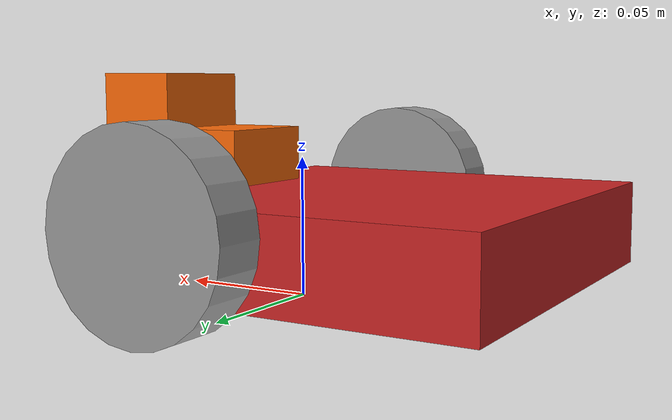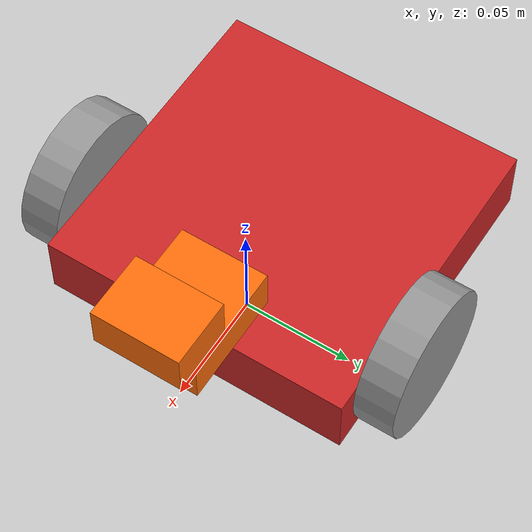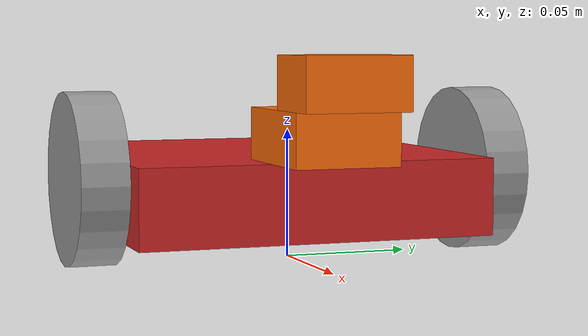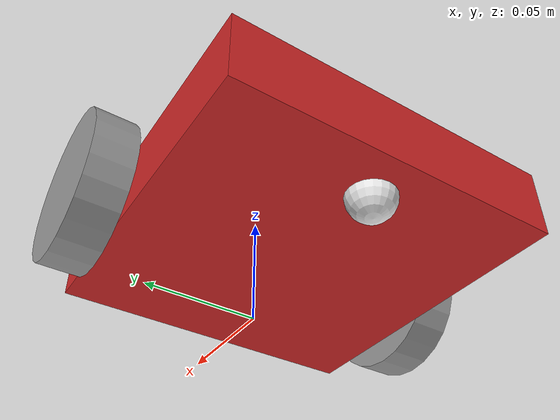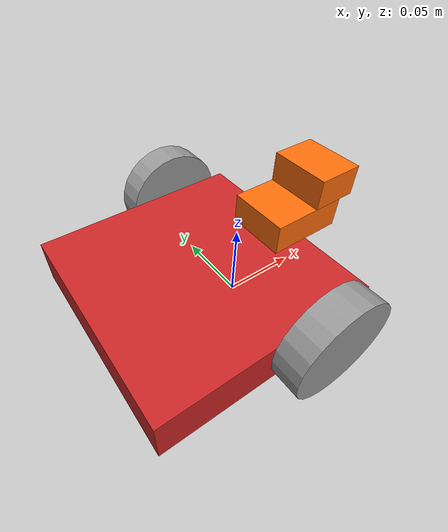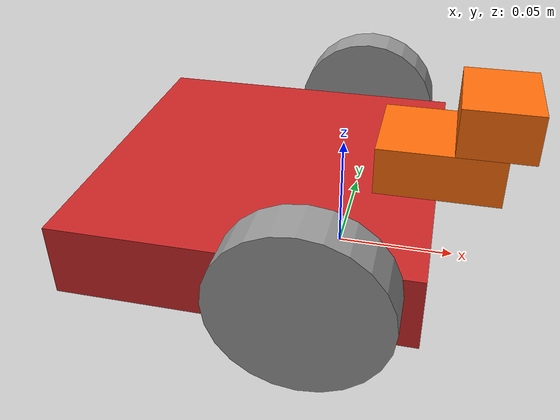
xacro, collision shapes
<?xml version="1.0"?>
<robot name="servomotor_diff_robot" xmlns:xacro="http://ros.org/wiki/xacro">
  <xacro:arg name="pi" default="3.14159"/>
  <xacro:include filename="$(find my_ugv_description)/urdf/servomotor_diff_robot_gazebo.xacro"/>

  <!-- Robot Gazebo Controller -->
  <xacro:servomotor_controller />

  <link name="base_footprint"/>

  <joint name="base_joint" type="fixed">
    <parent link="base_footprint"/>
    <child link="base_link"/>
    <origin xyz="0 0 0.01" rpy="0 0 0"/>
  </joint>
  <link name="base_link">
    <visual>
      <origin xyz="-0.03 0 0.015" rpy="0 0 0"/>
      <geometry>
        <box size="0.14 0.14 0.03" />
      </geometry>
    </visual>
    <collision>
      <origin xyz="-0.03 0 0.015" rpy="0 0 0"/>
      <geometry>
        <box size="0.140 0.140 0.03"/>
      </geometry>
    </collision>
    <inertial>
      <origin xyz="0 0 0.015" rpy="0 0 0"/> <!-- Note: A plugin is used to move the robot. To stabilize the mobile robot due to the servo_ link has inertia, a larger mass and inertia are used -->
      <mass value="${5*8.25e-01}"/>
      <inertia ixx="${5*1.4e-03}" ixy="0" ixz="0"
               iyy="${5*1.4e-03}" iyz="0"
               izz="${5*2.695e-03}" />
    </inertial>
  </link>

  <!-- Wheels definition (joints and links) -->
  <joint name="wheel_left_joint" type="continuous">
    <parent link="base_link"/>
    <child link="wheel_left_link"/>
    <origin xyz="0 0.08 0.023" rpy="-1.57 0 0"/>
    <axis xyz="0 0 1"/>
  </joint>
  <link name="wheel_left_link">
    <visual>
      <origin xyz="0 0 0" rpy="1.57 0 0"/>
      <geometry>
        <!--cylinder length="0.018" radius="0.033"/-->
        <mesh filename="package://my_ugv_description/meshes/husky_wheel.stl" scale="0.18 0.18 0.18"/>
      </geometry>
    </visual>
    <collision>
      <origin xyz="0 0 0" rpy="0 0 0"/>
      <geometry>
        <cylinder length="0.018" radius="0.033"/>
      </geometry>
    </collision>
    <inertial>
      <origin xyz="0 0 0" />
      <mass value="3e-02" />
      <inertia ixx="9e-06" ixy="0" ixz="0"
               iyy="9e-06" iyz="0"
               izz="1.6e-05" />
      </inertial>
  </link>

  <joint name="wheel_right_joint" type="continuous">
    <parent link="base_link"/>
    <child link="wheel_right_link"/>
    <origin xyz="0 -0.08 0.023" rpy="-1.57 0 0"/>
    <axis xyz="0 0 1"/>
  </joint>
  <link name="wheel_right_link">
    <visual>
      <origin xyz="0 0 0" rpy="1.57 0 0"/>
      <geometry>
        <!--cylinder length="0.018" radius="0.033"/-->
        <mesh filename="package://my_ugv_description/meshes/husky_wheel.stl" scale="0.18 0.18 0.18"/>
      </geometry>
    </visual>
    <collision>
      <origin xyz="0 0 0" rpy="0 0 0"/>
      <geometry>
        <cylinder length="0.018" radius="0.033"/>
      </geometry>
    </collision>
    <inertial>
      <origin xyz="0 0 0" />
      <mass value="3e-02" />
      <inertia ixx="9e-06" ixy="0" ixz="0"
               iyy="9e-06" iyz="0"
               izz="1.6e-05" />
      </inertial>
  </link>

  <!-- Caster wheel definition (joint and link) -->
  <joint name="caster_joint" type="fixed">
    <parent link="base_link"/>
    <child link="caster_link"/>
    <origin xyz="-0.08 0 0" rpy="0 0 0"/>
  </joint>
  <link name="caster_link">
    <visual>
      <origin xyz="0 0 0" rpy="0 0 0"/>
      <geometry>
        <sphere radius="0.01"/>
      </geometry>
    </visual>
    <collision>
      <origin xyz="0 0 0" rpy="0 0 0"/>
      <geometry>
        <sphere radius="0.01"/>
      </geometry>
    </collision>
    <inertial>
      <origin xyz="-0.08 0 0" />
      <mass value="5e-02" />
      <inertia ixx="2e-06" ixy="0" ixz="0" iyy="2e-06" iyz="0" izz="2e-06" />
    </inertial>
  </link>

  <!-- SERVOMOTOR and CAMERA definition -->
  <!-- Servomotor (joint, link and transmission) -->
  <joint name="servo_joint" type="revolute">
    <origin xyz="0.04 0 0.04" rpy="0 0 0"/>
    <parent link="base_link"/>
    <child link="servo_link"/>
    <axis xyz="0 0 1"/>
    <dynamics damping="0.001" friction="0.0"/> <!-- To allow the servo_link movement, both damping and friction parameters must be very low or zero. In this case, I add damping to reduce the oscillations in the steady state -->
    <limit effort="1" velocity="1" lower="${-pi/2}" upper="${pi/2}"/> <!-- Limit tag is required due to a revolute type joint is used -->
  </joint>

  <link name="servo_link">
    <visual>
      <origin xyz="0 0 0" rpy="0 0 0"/>
      <geometry>
        <box size="0.05 0.04 0.02"/>
      </geometry>
      <material name="orange"/> <!--Color in RViz-->
    </visual>

    <collision>
      <origin xyz="0 0 0" rpy="0 0 0"/>
      <geometry>
        <box size="0.05 0.04 0.02"/>
      </geometry>
    </collision>

    <inertial> <!-- The inertial tag must be correctly set up to obtain the desired link behavior -->
      <origin xyz="0 0 0" />
      <mass value="5e-02" />
      <inertia ixx="8.333e-06" ixy="0" ixz="0" iyy="1.2083e-05" iyz="0" izz="1.7083e-05" />
    </inertial>
  </link>

  <transmission name="tran">
    <type>transmission_interface/SimpleTransmission</type>
    <joint name="servo_joint">
      <hardwareInterface>hardware_interface/EffortJointInterface</hardwareInterface>
    </joint>
    <actuator name="motor">
      <hardwareInterface>hardware_interface/EffortJointInterface</hardwareInterface>
      <mechanicalReduction>1</mechanicalReduction><!-- This tag does not any change in simulation -->
    </actuator>
  </transmission>

  <!-- The joint and link of the camera. Note: Both link name and joint name must be the same as the ones used in the plugin -->
  <joint name="camera_rgb_optical_joint" type="fixed">
    <origin xyz="0.03 0 0.02" rpy="0 0 0"/> <!-- X axis is considered as the optical axis -->
    <parent link="servo_link"/> <!-- Note: The camera link is attached to the servo link -->
    <child link="camera_rgb_frame"/>
  </joint>
  <link name="camera_rgb_frame">
    <visual>
      <origin xyz="-0.015 0 0" rpy="0 0 0"/>
      <geometry>
        <box size="0.01 0.04 0.02"/>
      </geometry>
      <material name="orange"/> <!--Color in RViz-->
    </visual>
    <visual>
      <origin xyz="-0.01 0 0" rpy="0 0 0"/>
      <geometry>
        <mesh filename="package://my_ugv_description/meshes/max_sonar_ez4.dae" scale="1 1 0.8" />
      </geometry>
    </visual>

    <collision>
      <origin xyz="-0.01 0 0" rpy="0 0 0"/>
      <geometry>
        <box size="0.03 0.04 0.02"/>
      </geometry>
    </collision>
    <!-- Since a sensor is used, the inertial tag can be ommited -->
  </link>

</robot>

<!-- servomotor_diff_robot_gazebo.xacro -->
<robot name="servomotor_diff_robot" xmlns:xacro="http://ros.org/wiki/xacro">
  <xacro:arg name="camera_visual" default="true"/> <!-- With true, what the camera sees is shown en Gazebo-->
  <xacro:arg name="robot_ns" default="servo"/> <!-- The namespace must coincide with the one given in "*.yaml" and "*.launch" files -->

  <material name="orange"> <!-- Custom color (for RViz) -->
    <color rgba="${255/255} ${108/255} ${10/255} 1.0"/>
  </material>

  <gazebo reference="base_link">
    <material>Gazebo/Red</material> <!-- Color of the base link in Gazebo -->
  </gazebo>

  <gazebo reference="wheel_left_link"> <!-- Physical properties setup -->
    <mu1>0.1</mu1>
    <mu2>0.1</mu2>
    <kp>500000.0</kp>
    <kd>10.0</kd>
    <minDepth>0.001</minDepth>
    <maxVel>0.1</maxVel>
    <fdir1>1 0 0</fdir1>
    <material>Gazebo/Grey</material>
  </gazebo>

  <gazebo reference="wheel_right_link">
    <mu1>0.1</mu1>
    <mu2>0.1</mu2>
    <kp>500000.0</kp>
    <kd>10.0</kd>
    <minDepth>0.001</minDepth>
    <maxVel>0.1</maxVel>
    <fdir1>1 0 0</fdir1>
    <material>Gazebo/Grey</material>
  </gazebo>

  <gazebo reference="caster_link">
    <mu1>0.1</mu1>
    <mu2>0.1</mu2>
    <kp>1000000.0</kp>
    <kd>100.0</kd>
    <minDepth>0.001</minDepth>
    <maxVel>1.0</maxVel>
    <material>Gazebo/White</material>
  </gazebo>

  <gazebo reference="servo_link">
    <material>Gazebo/Gold</material>
  </gazebo>

  <gazebo>
    <plugin name="diff_controller" filename="libgazebo_ros_diff_drive.so"> <!-- Plugin for a differential mobile robot -->
      <commandTopic>cmd_vel</commandTopic>
      <odometryTopic>odom</odometryTopic>
      <odometryFrame>odom</odometryFrame>
      <odometrySource>world</odometrySource> <!-- world or encoder -->
      <publishOdomTF>true</publishOdomTF> <!-- Publish the fixed frame called odom, default = true-->
      <robotBaseFrame>base_footprint</robotBaseFrame>
      <publishWheelTF>true</publishWheelTF> <!-- default = false. To show the spining wheels attached to the robot in Rviz -->
      <publishTf>true</publishTf> <!-- default = true-->
      <publishWheelJointState>true</publishWheelJointState>
      <legacyMode>false</legacyMode>
      <updateRate>30</updateRate>
      <leftJoint>wheel_left_joint</leftJoint>
      <rightJoint>wheel_right_joint</rightJoint>
      <wheelSeparation>0.160</wheelSeparation>
      <wheelDiameter>0.066</wheelDiameter>
      <wheelAcceleration>1</wheelAcceleration>
      <wheelTorque>10</wheelTorque>
      <rosDebugLevel>na</rosDebugLevel>
    </plugin>
  </gazebo>

  <!-- A Raspberry Pi Camera v2.1 is simulated. Link : https://www.raspberrypi.org/documentation/hardware/camera/-->
  <gazebo reference="camera_rgb_frame">
    <sensor type="camera" name="Pi_camera">
      <always_on>true</always_on>
      <visualize>$(arg camera_visual)</visualize>
      <camera>
          <horizontal_fov>1.085595</horizontal_fov>
          <image>
              <width>640</width>
              <height>480</height>
              <format>R8G8B8</format>
          </image>
          <clip>
              <near>0.03</near>
              <far>100</far>
          </clip>
      </camera>
      <plugin name="camera_controller" filename="libgazebo_ros_camera.so"> <!-- Plugin for a monocular camera -->
        <alwaysOn>true</alwaysOn>
        <updateRate>30.0</updateRate>
        <cameraName>camera</cameraName>
        <frameName>camera_rgb_optical_joint</frameName>
        <imageTopicName>rgb/image_raw</imageTopicName>
        <cameraInfoTopicName>rgb/camera_info</cameraInfoTopicName>
        <hackBaseline>0.07</hackBaseline>
        <distortionK1>0.0</distortionK1>
        <distortionK2>0.0</distortionK2>
        <distortionK3>0.0</distortionK3>
        <distortionT1>0.0</distortionT1>
        <distortionT2>0.0</distortionT2>
      </plugin>
    </sensor>
  </gazebo>

 <!-- ros_control plugin -->
 <xacro:macro name="servomotor_controller">
  <gazebo>
    <plugin name="gazebo_ros_control" filename="libgazebo_ros_control.so">
      <robotNamespace>$(arg robot_ns)</robotNamespace>
      <robotSimType>gazebo_ros_control/DefaultRobotHWSim</robotSimType>
      <legacyModeNS>true</legacyModeNS>
    </plugin>
  </gazebo>
 </xacro:macro>

</robot>
